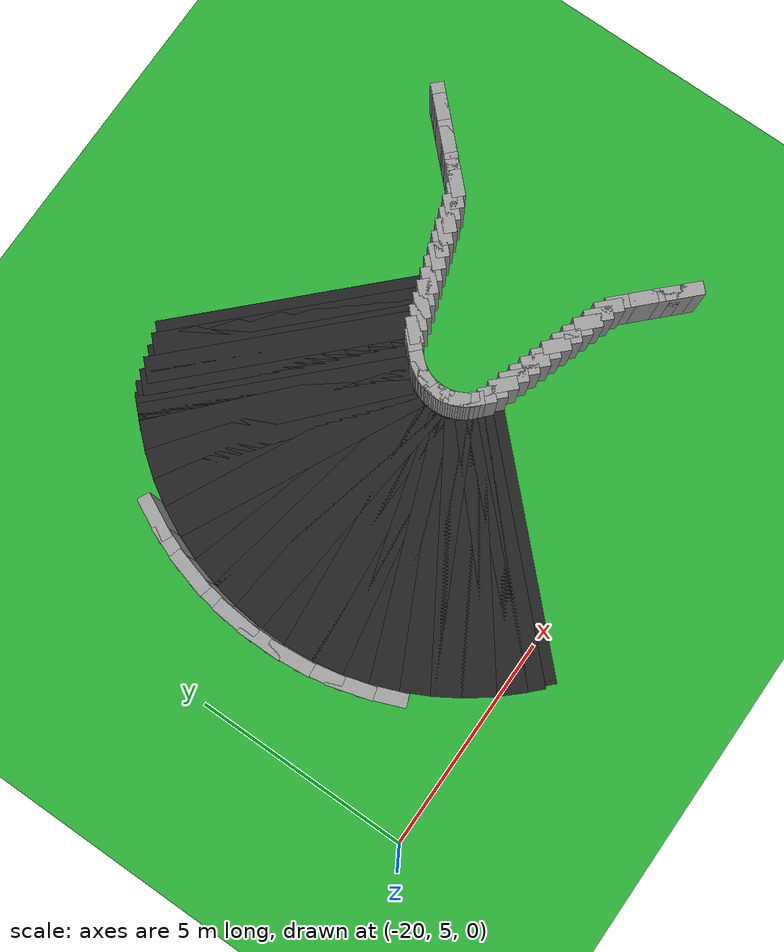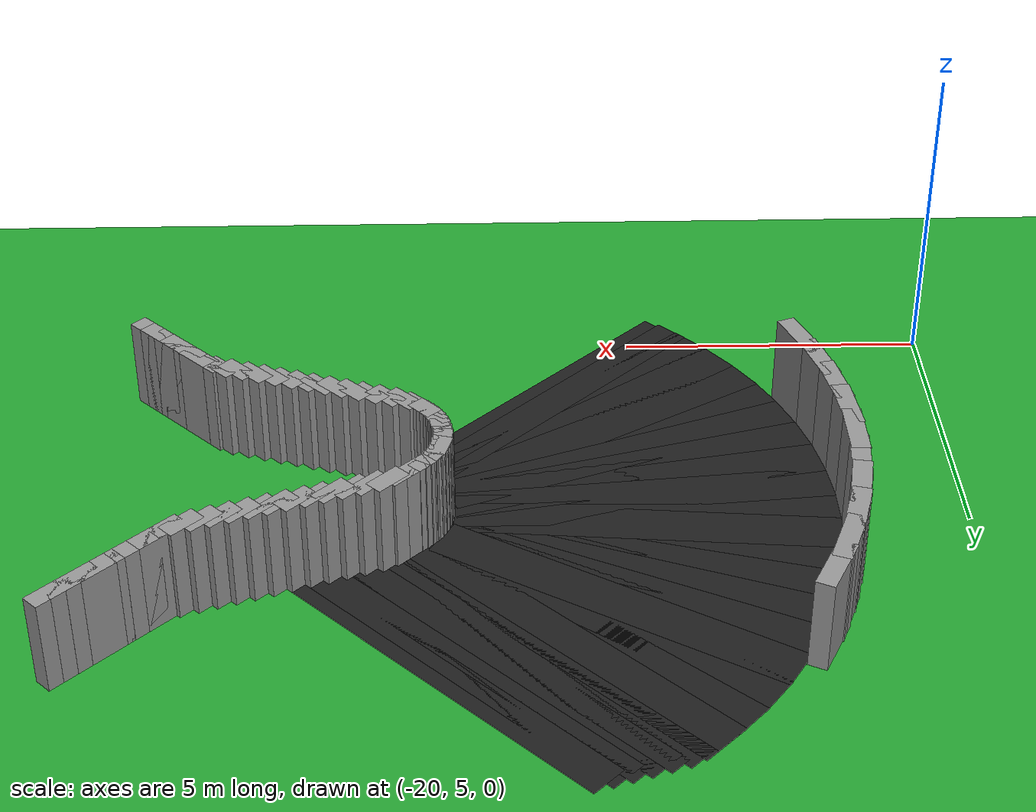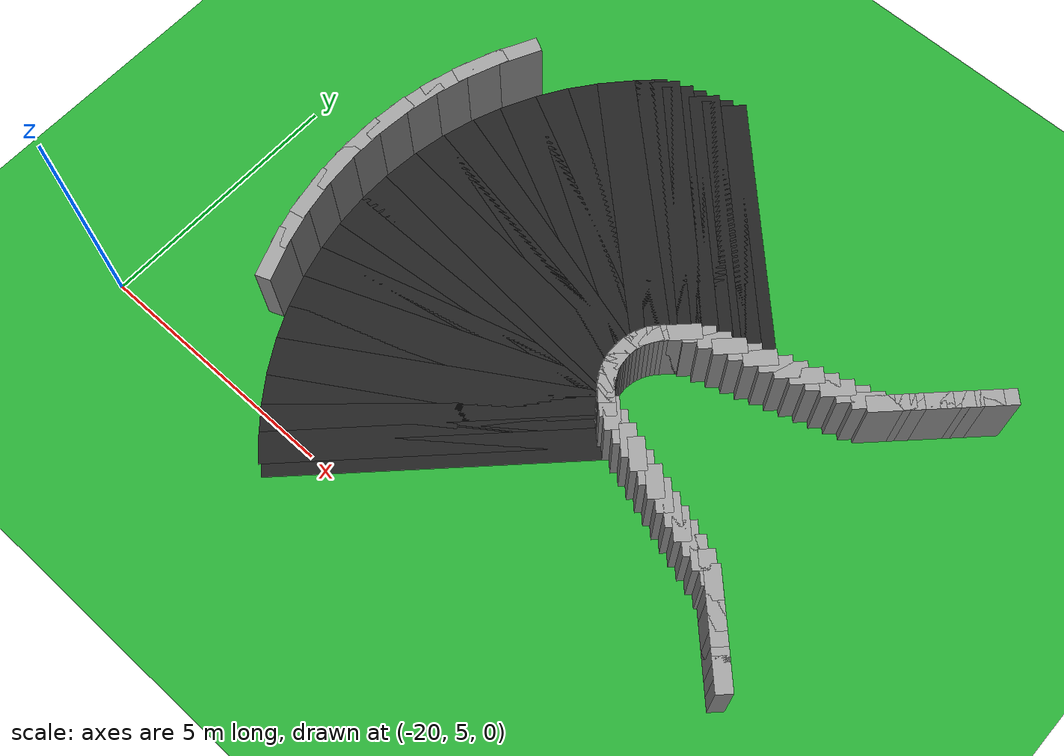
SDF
<sdf version="1.6">
 <world name="obstacle_asymturn">
  <include><uri>model://sun</uri></include>
  <model name="ground_plane">
   <static>true</static>
   <link name="link">
    <collision name="collision">
     <surface><friction><ode><mu>100</mu><mu2>50</mu2></ode></friction></surface>
     <geometry><plane><normal>0 0 1</normal><size>120 120</size></plane></geometry>
    </collision>
    <visual name="visual">
     <geometry><plane><normal>0 0 1</normal><size>120 120</size></plane></geometry>
     <material>
      <script><uri>file://media/materials/scripts/gazebo.material</uri><name>Gazebo/Green</name></script>
     </material>
    </visual>
   </link>
  </model>
  <model name="curbL_388">
   <static>true</static>
   <pose>-6.523 13.327 0.750 0 0 -2.35619</pose>
   <link name="link">
    <collision name="collision"><geometry><box><size>0.610 0.300 1.500</size></box></geometry></collision>
    <visual name="visual">
     <geometry><box><size>0.610 0.300 1.500</size></box></geometry>
     <material>
      <script><uri>file://media/materials/scripts/gazebo.material</uri><name>Gazebo/Grey</name></script>
     </material>
    </visual>
   </link>
  </model>
  <model name="curbL_389">
   <static>true</static>
   <pose>-6.700 13.150 0.750 0 0 -2.35619</pose>
   <link name="link">
    <collision name="collision"><geometry><box><size>0.610 0.300 1.500</size></box></geometry></collision>
    <visual name="visual">
     <geometry><box><size>0.610 0.300 1.500</size></box></geometry>
     <material>
      <script><uri>file://media/materials/scripts/gazebo.material</uri><name>Gazebo/Grey</name></script>
     </material>
    </visual>
   </link>
  </model>
  <model name="curbL_390">
   <static>true</static>
   <pose>-6.877 12.974 0.750 0 0 -2.35619</pose>
   <link name="link">
    <collision name="collision"><geometry><box><size>0.610 0.300 1.500</size></box></geometry></collision>
    <visual name="visual">
     <geometry><box><size>0.610 0.300 1.500</size></box></geometry>
     <material>
      <script><uri>file://media/materials/scripts/gazebo.material</uri><name>Gazebo/Grey</name></script>
     </material>
    </visual>
   </link>
  </model>
  <model name="curbL_391">
   <static>true</static>
   <pose>-7.054 12.797 0.750 0 0 -2.35619</pose>
   <link name="link">
    <collision name="collision"><geometry><box><size>0.610 0.300 1.500</size></box></geometry></collision>
    <visual name="visual">
     <geometry><box><size>0.610 0.300 1.500</size></box></geometry>
     <material>
      <script><uri>file://media/materials/scripts/gazebo.material</uri><name>Gazebo/Grey</name></script>
     </material>
    </visual>
   </link>
  </model>
  <model name="curbL_392">
   <static>true</static>
   <pose>-7.230 12.620 0.750 0 0 -2.35619</pose>
   <link name="link">
    <collision name="collision"><geometry><box><size>0.610 0.300 1.500</size></box></geometry></collision>
    <visual name="visual">
     <geometry><box><size>0.610 0.300 1.500</size></box></geometry>
     <material>
      <script><uri>file://media/materials/scripts/gazebo.material</uri><name>Gazebo/Grey</name></script>
     </material>
    </visual>
   </link>
  </model>
  <model name="curbL_393">
   <static>true</static>
   <pose>-7.407 12.443 0.750 0 0 -2.35619</pose>
   <link name="link">
    <collision name="collision"><geometry><box><size>0.610 0.300 1.500</size></box></geometry></collision>
    <visual name="visual">
     <geometry><box><size>0.610 0.300 1.500</size></box></geometry>
     <material>
      <script><uri>file://media/materials/scripts/gazebo.material</uri><name>Gazebo/Grey</name></script>
     </material>
    </visual>
   </link>
  </model>
  <model name="curbL_394">
   <static>true</static>
   <pose>-7.584 12.267 0.750 0 0 -2.35619</pose>
   <link name="link">
    <collision name="collision"><geometry><box><size>0.610 0.300 1.500</size></box></geometry></collision>
    <visual name="visual">
     <geometry><box><size>0.610 0.300 1.500</size></box></geometry>
     <material>
      <script><uri>file://media/materials/scripts/gazebo.material</uri><name>Gazebo/Grey</name></script>
     </material>
    </visual>
   </link>
  </model>
  <model name="curbL_395">
   <static>true</static>
   <pose>-7.761 12.090 0.750 0 0 -2.35619</pose>
   <link name="link">
    <collision name="collision"><geometry><box><size>0.610 0.300 1.500</size></box></geometry></collision>
    <visual name="visual">
     <geometry><box><size>0.610 0.300 1.500</size></box></geometry>
     <material>
      <script><uri>file://media/materials/scripts/gazebo.material</uri><name>Gazebo/Grey</name></script>
     </material>
    </visual>
   </link>
  </model>
  <model name="curbL_396">
   <static>true</static>
   <pose>-7.937 11.913 0.750 0 0 -2.35619</pose>
   <link name="link">
    <collision name="collision"><geometry><box><size>0.610 0.300 1.500</size></box></geometry></collision>
    <visual name="visual">
     <geometry><box><size>0.610 0.300 1.500</size></box></geometry>
     <material>
      <script><uri>file://media/materials/scripts/gazebo.material</uri><name>Gazebo/Grey</name></script>
     </material>
    </visual>
   </link>
  </model>
  <model name="curbL_397">
   <static>true</static>
   <pose>-8.164 11.786 0.750 0 0 -2.35619</pose>
   <link name="link">
    <collision name="collision"><geometry><box><size>0.610 0.300 1.500</size></box></geometry></collision>
    <visual name="visual">
     <geometry><box><size>0.610 0.300 1.500</size></box></geometry>
     <material>
      <script><uri>file://media/materials/scripts/gazebo.material</uri><name>Gazebo/Grey</name></script>
     </material>
    </visual>
   </link>
  </model>
  <model name="curbL_398">
   <static>true</static>
   <pose>-8.429 11.698 0.750 0 0 -2.35619</pose>
   <link name="link">
    <collision name="collision"><geometry><box><size>0.610 0.300 1.500</size></box></geometry></collision>
    <visual name="visual">
     <geometry><box><size>0.610 0.300 1.500</size></box></geometry>
     <material>
      <script><uri>file://media/materials/scripts/gazebo.material</uri><name>Gazebo/Grey</name></script>
     </material>
    </visual>
   </link>
  </model>
  <model name="curbL_399">
   <static>true</static>
   <pose>-8.694 11.609 0.750 0 0 -2.35619</pose>
   <link name="link">
    <collision name="collision"><geometry><box><size>0.610 0.300 1.500</size></box></geometry></collision>
    <visual name="visual">
     <geometry><box><size>0.610 0.300 1.500</size></box></geometry>
     <material>
      <script><uri>file://media/materials/scripts/gazebo.material</uri><name>Gazebo/Grey</name></script>
     </material>
    </visual>
   </link>
  </model>
  <model name="curbL_400">
   <static>true</static>
   <pose>-8.959 11.521 0.750 0 0 -2.35619</pose>
   <link name="link">
    <collision name="collision"><geometry><box><size>0.610 0.300 1.500</size></box></geometry></collision>
    <visual name="visual">
     <geometry><box><size>0.610 0.300 1.500</size></box></geometry>
     <material>
      <script><uri>file://media/materials/scripts/gazebo.material</uri><name>Gazebo/Grey</name></script>
     </material>
    </visual>
   </link>
  </model>
  <model name="curbL_401">
   <static>true</static>
   <pose>-9.225 11.432 0.750 0 0 -2.35619</pose>
   <link name="link">
    <collision name="collision"><geometry><box><size>0.610 0.300 1.500</size></box></geometry></collision>
    <visual name="visual">
     <geometry><box><size>0.610 0.300 1.500</size></box></geometry>
     <material>
      <script><uri>file://media/materials/scripts/gazebo.material</uri><name>Gazebo/Grey</name></script>
     </material>
    </visual>
   </link>
  </model>
  <model name="curbL_402">
   <static>true</static>
   <pose>-9.490 11.344 0.750 0 0 -2.35619</pose>
   <link name="link">
    <collision name="collision"><geometry><box><size>0.610 0.300 1.500</size></box></geometry></collision>
    <visual name="visual">
     <geometry><box><size>0.610 0.300 1.500</size></box></geometry>
     <material>
      <script><uri>file://media/materials/scripts/gazebo.material</uri><name>Gazebo/Grey</name></script>
     </material>
    </visual>
   </link>
  </model>
  <model name="asphalt_403">
   <static>true</static>
   <pose>-11.982 13.483 0.005 0 0 -2.35619</pose>
   <link name="link">
    <visual name="visual">
     <geometry><box><size>0.610 6.000 0.010</size></box></geometry>
     <material>
      <script><uri>file://media/materials/scripts/gazebo.material</uri><name>Gazebo/Black</name></script>
     </material>
    </visual>
   </link>
  </model>
  <model name="curbL_403">
   <static>true</static>
   <pose>-9.755 11.256 0.750 0 0 -2.35619</pose>
   <link name="link">
    <collision name="collision"><geometry><box><size>0.610 0.300 1.500</size></box></geometry></collision>
    <visual name="visual">
     <geometry><box><size>0.610 0.300 1.500</size></box></geometry>
     <material>
      <script><uri>file://media/materials/scripts/gazebo.material</uri><name>Gazebo/Grey</name></script>
     </material>
    </visual>
   </link>
  </model>
  <model name="asphalt_404">
   <static>true</static>
   <pose>-12.247 13.395 0.005 0 0 -2.35619</pose>
   <link name="link">
    <visual name="visual">
     <geometry><box><size>0.610 6.000 0.010</size></box></geometry>
     <material>
      <script><uri>file://media/materials/scripts/gazebo.material</uri><name>Gazebo/Black</name></script>
     </material>
    </visual>
   </link>
  </model>
  <model name="curbL_404">
   <static>true</static>
   <pose>-10.020 11.167 0.750 0 0 -2.35619</pose>
   <link name="link">
    <collision name="collision"><geometry><box><size>0.610 0.300 1.500</size></box></geometry></collision>
    <visual name="visual">
     <geometry><box><size>0.610 0.300 1.500</size></box></geometry>
     <material>
      <script><uri>file://media/materials/scripts/gazebo.material</uri><name>Gazebo/Grey</name></script>
     </material>
    </visual>
   </link>
  </model>
  <model name="asphalt_405">
   <static>true</static>
   <pose>-12.513 13.306 0.005 0 0 -2.35619</pose>
   <link name="link">
    <visual name="visual">
     <geometry><box><size>0.610 6.000 0.010</size></box></geometry>
     <material>
      <script><uri>file://media/materials/scripts/gazebo.material</uri><name>Gazebo/Black</name></script>
     </material>
    </visual>
   </link>
  </model>
  <model name="curbL_405">
   <static>true</static>
   <pose>-10.285 11.079 0.750 0 0 -2.35619</pose>
   <link name="link">
    <collision name="collision"><geometry><box><size>0.610 0.300 1.500</size></box></geometry></collision>
    <visual name="visual">
     <geometry><box><size>0.610 0.300 1.500</size></box></geometry>
     <material>
      <script><uri>file://media/materials/scripts/gazebo.material</uri><name>Gazebo/Grey</name></script>
     </material>
    </visual>
   </link>
  </model>
  <model name="asphalt_406">
   <static>true</static>
   <pose>-12.778 13.218 0.005 0 0 -2.35619</pose>
   <link name="link">
    <visual name="visual">
     <geometry><box><size>0.610 6.000 0.010</size></box></geometry>
     <material>
      <script><uri>file://media/materials/scripts/gazebo.material</uri><name>Gazebo/Black</name></script>
     </material>
    </visual>
   </link>
  </model>
  <model name="curbL_406">
   <static>true</static>
   <pose>-10.550 10.990 0.750 0 0 -2.35619</pose>
   <link name="link">
    <collision name="collision"><geometry><box><size>0.610 0.300 1.500</size></box></geometry></collision>
    <visual name="visual">
     <geometry><box><size>0.610 0.300 1.500</size></box></geometry>
     <material>
      <script><uri>file://media/materials/scripts/gazebo.material</uri><name>Gazebo/Grey</name></script>
     </material>
    </visual>
   </link>
  </model>
  <model name="asphalt_407">
   <static>true</static>
   <pose>-13.043 13.129 0.005 0 0 -2.35619</pose>
   <link name="link">
    <visual name="visual">
     <geometry><box><size>0.610 6.000 0.010</size></box></geometry>
     <material>
      <script><uri>file://media/materials/scripts/gazebo.material</uri><name>Gazebo/Black</name></script>
     </material>
    </visual>
   </link>
  </model>
  <model name="curbL_407">
   <static>true</static>
   <pose>-10.816 10.902 0.750 0 0 -2.35619</pose>
   <link name="link">
    <collision name="collision"><geometry><box><size>0.610 0.300 1.500</size></box></geometry></collision>
    <visual name="visual">
     <geometry><box><size>0.610 0.300 1.500</size></box></geometry>
     <material>
      <script><uri>file://media/materials/scripts/gazebo.material</uri><name>Gazebo/Grey</name></script>
     </material>
    </visual>
   </link>
  </model>
  <model name="asphalt_408">
   <static>true</static>
   <pose>-13.308 13.041 0.005 0 0 -2.35619</pose>
   <link name="link">
    <visual name="visual">
     <geometry><box><size>0.610 6.000 0.010</size></box></geometry>
     <material>
      <script><uri>file://media/materials/scripts/gazebo.material</uri><name>Gazebo/Black</name></script>
     </material>
    </visual>
   </link>
  </model>
  <model name="curbL_408">
   <static>true</static>
   <pose>-11.081 10.814 0.750 0 0 -2.35619</pose>
   <link name="link">
    <collision name="collision"><geometry><box><size>0.610 0.300 1.500</size></box></geometry></collision>
    <visual name="visual">
     <geometry><box><size>0.610 0.300 1.500</size></box></geometry>
     <material>
      <script><uri>file://media/materials/scripts/gazebo.material</uri><name>Gazebo/Grey</name></script>
     </material>
    </visual>
   </link>
  </model>
  <model name="asphalt_409">
   <static>true</static>
   <pose>-13.524 12.903 0.005 0 0 -2.35619</pose>
   <link name="link">
    <visual name="visual">
     <geometry><box><size>0.610 6.000 0.010</size></box></geometry>
     <material>
      <script><uri>file://media/materials/scripts/gazebo.material</uri><name>Gazebo/Black</name></script>
     </material>
    </visual>
   </link>
  </model>
  <model name="curbL_409">
   <static>true</static>
   <pose>-11.296 10.676 0.750 0 0 -2.35619</pose>
   <link name="link">
    <collision name="collision"><geometry><box><size>0.610 0.300 1.500</size></box></geometry></collision>
    <visual name="visual">
     <geometry><box><size>0.610 0.300 1.500</size></box></geometry>
     <material>
      <script><uri>file://media/materials/scripts/gazebo.material</uri><name>Gazebo/Grey</name></script>
     </material>
    </visual>
   </link>
  </model>
  <model name="asphalt_410">
   <static>true</static>
   <pose>-13.700 12.726 0.005 0 0 -2.35619</pose>
   <link name="link">
    <visual name="visual">
     <geometry><box><size>0.610 6.000 0.010</size></box></geometry>
     <material>
      <script><uri>file://media/materials/scripts/gazebo.material</uri><name>Gazebo/Black</name></script>
     </material>
    </visual>
   </link>
  </model>
  <model name="curbL_410">
   <static>true</static>
   <pose>-11.473 10.499 0.750 0 0 -2.35619</pose>
   <link name="link">
    <collision name="collision"><geometry><box><size>0.610 0.300 1.500</size></box></geometry></collision>
    <visual name="visual">
     <geometry><box><size>0.610 0.300 1.500</size></box></geometry>
     <material>
      <script><uri>file://media/materials/scripts/gazebo.material</uri><name>Gazebo/Grey</name></script>
     </material>
    </visual>
   </link>
  </model>
  <model name="asphalt_411">
   <static>true</static>
   <pose>-13.919 12.494 0.005 0 0 -2.30999</pose>
   <link name="link">
    <visual name="visual">
     <geometry><box><size>0.748 6.000 0.010</size></box></geometry>
     <material>
      <script><uri>file://media/materials/scripts/gazebo.material</uri><name>Gazebo/Black</name></script>
     </material>
    </visual>
   </link>
  </model>
  <model name="curbL_411">
   <static>true</static>
   <pose>-11.594 10.375 0.750 0 0 -2.30999</pose>
   <link name="link">
    <collision name="collision"><geometry><box><size>0.457 0.300 1.500</size></box></geometry></collision>
    <visual name="visual">
     <geometry><box><size>0.457 0.300 1.500</size></box></geometry>
     <material>
      <script><uri>file://media/materials/scripts/gazebo.material</uri><name>Gazebo/Grey</name></script>
     </material>
    </visual>
   </link>
  </model>
  <model name="asphalt_412">
   <static>true</static>
   <pose>-14.167 12.196 0.005 0 0 -2.21759</pose>
   <link name="link">
    <visual name="visual">
     <geometry><box><size>0.748 6.000 0.010</size></box></geometry>
     <material>
      <script><uri>file://media/materials/scripts/gazebo.material</uri><name>Gazebo/Black</name></script>
     </material>
    </visual>
   </link>
  </model>
  <model name="curbL_412">
   <static>true</static>
   <pose>-11.656 10.300 0.750 0 0 -2.21759</pose>
   <link name="link">
    <collision name="collision"><geometry><box><size>0.457 0.300 1.500</size></box></geometry></collision>
    <visual name="visual">
     <geometry><box><size>0.457 0.300 1.500</size></box></geometry>
     <material>
      <script><uri>file://media/materials/scripts/gazebo.material</uri><name>Gazebo/Grey</name></script>
     </material>
    </visual>
   </link>
  </model>
  <model name="asphalt_413">
   <static>true</static>
   <pose>-14.386 11.876 0.005 0 0 -2.12520</pose>
   <link name="link">
    <visual name="visual">
     <geometry><box><size>0.748 6.000 0.010</size></box></geometry>
     <material>
      <script><uri>file://media/materials/scripts/gazebo.material</uri><name>Gazebo/Black</name></script>
     </material>
    </visual>
   </link>
  </model>
  <model name="curbL_413">
   <static>true</static>
   <pose>-11.711 10.220 0.750 0 0 -2.12520</pose>
   <link name="link">
    <collision name="collision"><geometry><box><size>0.457 0.300 1.500</size></box></geometry></collision>
    <visual name="visual">
     <geometry><box><size>0.457 0.300 1.500</size></box></geometry>
     <material>
      <script><uri>file://media/materials/scripts/gazebo.material</uri><name>Gazebo/Grey</name></script>
     </material>
    </visual>
   </link>
  </model>
  <model name="asphalt_414">
   <static>true</static>
   <pose>-14.575 11.538 0.005 0 0 -2.03280</pose>
   <link name="link">
    <visual name="visual">
     <geometry><box><size>0.748 6.000 0.010</size></box></geometry>
     <material>
      <script><uri>file://media/materials/scripts/gazebo.material</uri><name>Gazebo/Black</name></script>
     </material>
    </visual>
   </link>
  </model>
  <model name="curbL_414">
   <static>true</static>
   <pose>-11.758 10.135 0.750 0 0 -2.03280</pose>
   <link name="link">
    <collision name="collision"><geometry><box><size>0.457 0.300 1.500</size></box></geometry></collision>
    <visual name="visual">
     <geometry><box><size>0.457 0.300 1.500</size></box></geometry>
     <material>
      <script><uri>file://media/materials/scripts/gazebo.material</uri><name>Gazebo/Grey</name></script>
     </material>
    </visual>
   </link>
  </model>
  <model name="curbR_414">
   <static>true</static>
   <pose>-17.391 12.940 0.750 0 0 -2.03280</pose>
   <link name="link">
    <collision name="collision"><geometry><box><size>1.039 0.300 1.500</size></box></geometry></collision>
    <visual name="visual">
     <geometry><box><size>1.039 0.300 1.500</size></box></geometry>
     <material>
      <script><uri>file://media/materials/scripts/gazebo.material</uri><name>Gazebo/Grey</name></script>
     </material>
    </visual>
   </link>
  </model>
  <model name="asphalt_415">
   <static>true</static>
   <pose>-14.731 11.183 0.005 0 0 -1.94040</pose>
   <link name="link">
    <visual name="visual">
     <geometry><box><size>0.748 6.000 0.010</size></box></geometry>
     <material>
      <script><uri>file://media/materials/scripts/gazebo.material</uri><name>Gazebo/Black</name></script>
     </material>
    </visual>
   </link>
  </model>
  <model name="curbL_415">
   <static>true</static>
   <pose>-11.797 10.047 0.750 0 0 -1.94040</pose>
   <link name="link">
    <collision name="collision"><geometry><box><size>0.457 0.300 1.500</size></box></geometry></collision>
    <visual name="visual">
     <geometry><box><size>0.457 0.300 1.500</size></box></geometry>
     <material>
      <script><uri>file://media/materials/scripts/gazebo.material</uri><name>Gazebo/Grey</name></script>
     </material>
    </visual>
   </link>
  </model>
  <model name="curbR_415">
   <static>true</static>
   <pose>-17.665 12.320 0.750 0 0 -1.94040</pose>
   <link name="link">
    <collision name="collision"><geometry><box><size>1.039 0.300 1.500</size></box></geometry></collision>
    <visual name="visual">
     <geometry><box><size>1.039 0.300 1.500</size></box></geometry>
     <material>
      <script><uri>file://media/materials/scripts/gazebo.material</uri><name>Gazebo/Grey</name></script>
     </material>
    </visual>
   </link>
  </model>
  <model name="asphalt_416">
   <static>true</static>
   <pose>-14.854 10.816 0.005 0 0 -1.84800</pose>
   <link name="link">
    <visual name="visual">
     <geometry><box><size>0.748 6.000 0.010</size></box></geometry>
     <material>
      <script><uri>file://media/materials/scripts/gazebo.material</uri><name>Gazebo/Black</name></script>
     </material>
    </visual>
   </link>
  </model>
  <model name="curbL_416">
   <static>true</static>
   <pose>-11.828 9.955 0.750 0 0 -1.84800</pose>
   <link name="link">
    <collision name="collision"><geometry><box><size>0.457 0.300 1.500</size></box></geometry></collision>
    <visual name="visual">
     <geometry><box><size>0.457 0.300 1.500</size></box></geometry>
     <material>
      <script><uri>file://media/materials/scripts/gazebo.material</uri><name>Gazebo/Grey</name></script>
     </material>
    </visual>
   </link>
  </model>
  <model name="curbR_416">
   <static>true</static>
   <pose>-17.881 11.677 0.750 0 0 -1.84800</pose>
   <link name="link">
    <collision name="collision"><geometry><box><size>1.039 0.300 1.500</size></box></geometry></collision>
    <visual name="visual">
     <geometry><box><size>1.039 0.300 1.500</size></box></geometry>
     <material>
      <script><uri>file://media/materials/scripts/gazebo.material</uri><name>Gazebo/Grey</name></script>
     </material>
    </visual>
   </link>
  </model>
  <model name="asphalt_417">
   <static>true</static>
   <pose>-14.943 10.438 0.005 0 0 -1.75560</pose>
   <link name="link">
    <visual name="visual">
     <geometry><box><size>0.748 6.000 0.010</size></box></geometry>
     <material>
      <script><uri>file://media/materials/scripts/gazebo.material</uri><name>Gazebo/Black</name></script>
     </material>
    </visual>
   </link>
  </model>
  <model name="curbL_417">
   <static>true</static>
   <pose>-11.850 9.860 0.750 0 0 -1.75560</pose>
   <link name="link">
    <collision name="collision"><geometry><box><size>0.457 0.300 1.500</size></box></geometry></collision>
    <visual name="visual">
     <geometry><box><size>0.457 0.300 1.500</size></box></geometry>
     <material>
      <script><uri>file://media/materials/scripts/gazebo.material</uri><name>Gazebo/Grey</name></script>
     </material>
    </visual>
   </link>
  </model>
  <model name="curbR_417">
   <static>true</static>
   <pose>-18.036 11.017 0.750 0 0 -1.75560</pose>
   <link name="link">
    <collision name="collision"><geometry><box><size>1.039 0.300 1.500</size></box></geometry></collision>
    <visual name="visual">
     <geometry><box><size>1.039 0.300 1.500</size></box></geometry>
     <material>
      <script><uri>file://media/materials/scripts/gazebo.material</uri><name>Gazebo/Grey</name></script>
     </material>
    </visual>
   </link>
  </model>
  <model name="asphalt_418">
   <static>true</static>
   <pose>-14.997 10.054 0.005 0 0 -1.66320</pose>
   <link name="link">
    <visual name="visual">
     <geometry><box><size>0.748 6.000 0.010</size></box></geometry>
     <material>
      <script><uri>file://media/materials/scripts/gazebo.material</uri><name>Gazebo/Black</name></script>
     </material>
    </visual>
   </link>
  </model>
  <model name="curbL_418">
   <static>true</static>
   <pose>-11.864 9.764 0.750 0 0 -1.66320</pose>
   <link name="link">
    <collision name="collision"><geometry><box><size>0.457 0.300 1.500</size></box></geometry></collision>
    <visual name="visual">
     <geometry><box><size>0.457 0.300 1.500</size></box></geometry>
     <material>
      <script><uri>file://media/materials/scripts/gazebo.material</uri><name>Gazebo/Grey</name></script>
     </material>
    </visual>
   </link>
  </model>
  <model name="curbR_418">
   <static>true</static>
   <pose>-18.130 10.345 0.750 0 0 -1.66320</pose>
   <link name="link">
    <collision name="collision"><geometry><box><size>1.039 0.300 1.500</size></box></geometry></collision>
    <visual name="visual">
     <geometry><box><size>1.039 0.300 1.500</size></box></geometry>
     <material>
      <script><uri>file://media/materials/scripts/gazebo.material</uri><name>Gazebo/Grey</name></script>
     </material>
    </visual>
   </link>
  </model>
  <model name="asphalt_419">
   <static>true</static>
   <pose>-15.015 9.667 0.005 0 0 -1.57080</pose>
   <link name="link">
    <visual name="visual">
     <geometry><box><size>0.748 6.000 0.010</size></box></geometry>
     <material>
      <script><uri>file://media/materials/scripts/gazebo.material</uri><name>Gazebo/Black</name></script>
     </material>
    </visual>
   </link>
  </model>
  <model name="curbL_419">
   <static>true</static>
   <pose>-11.868 9.667 0.750 0 0 -1.57080</pose>
   <link name="link">
    <collision name="collision"><geometry><box><size>0.457 0.300 1.500</size></box></geometry></collision>
    <visual name="visual">
     <geometry><box><size>0.457 0.300 1.500</size></box></geometry>
     <material>
      <script><uri>file://media/materials/scripts/gazebo.material</uri><name>Gazebo/Grey</name></script>
     </material>
    </visual>
   </link>
  </model>
  <model name="curbR_419">
   <static>true</static>
   <pose>-18.161 9.667 0.750 0 0 -1.57080</pose>
   <link name="link">
    <collision name="collision"><geometry><box><size>1.039 0.300 1.500</size></box></geometry></collision>
    <visual name="visual">
     <geometry><box><size>1.039 0.300 1.500</size></box></geometry>
     <material>
      <script><uri>file://media/materials/scripts/gazebo.material</uri><name>Gazebo/Grey</name></script>
     </material>
    </visual>
   </link>
  </model>
  <model name="asphalt_420">
   <static>true</static>
   <pose>-14.997 9.280 0.005 0 0 -1.47840</pose>
   <link name="link">
    <visual name="visual">
     <geometry><box><size>0.748 6.000 0.010</size></box></geometry>
     <material>
      <script><uri>file://media/materials/scripts/gazebo.material</uri><name>Gazebo/Black</name></script>
     </material>
    </visual>
   </link>
  </model>
  <model name="curbL_420">
   <static>true</static>
   <pose>-11.864 9.570 0.750 0 0 -1.47840</pose>
   <link name="link">
    <collision name="collision"><geometry><box><size>0.457 0.300 1.500</size></box></geometry></collision>
    <visual name="visual">
     <geometry><box><size>0.457 0.300 1.500</size></box></geometry>
     <material>
      <script><uri>file://media/materials/scripts/gazebo.material</uri><name>Gazebo/Grey</name></script>
     </material>
    </visual>
   </link>
  </model>
  <model name="curbR_420">
   <static>true</static>
   <pose>-18.130 8.990 0.750 0 0 -1.47840</pose>
   <link name="link">
    <collision name="collision"><geometry><box><size>1.039 0.300 1.500</size></box></geometry></collision>
    <visual name="visual">
     <geometry><box><size>1.039 0.300 1.500</size></box></geometry>
     <material>
      <script><uri>file://media/materials/scripts/gazebo.material</uri><name>Gazebo/Grey</name></script>
     </material>
    </visual>
   </link>
  </model>
  <model name="asphalt_421">
   <static>true</static>
   <pose>-14.943 8.896 0.005 0 0 -1.38600</pose>
   <link name="link">
    <visual name="visual">
     <geometry><box><size>0.748 6.000 0.010</size></box></geometry>
     <material>
      <script><uri>file://media/materials/scripts/gazebo.material</uri><name>Gazebo/Black</name></script>
     </material>
    </visual>
   </link>
  </model>
  <model name="curbL_421">
   <static>true</static>
   <pose>-11.850 9.474 0.750 0 0 -1.38600</pose>
   <link name="link">
    <collision name="collision"><geometry><box><size>0.457 0.300 1.500</size></box></geometry></collision>
    <visual name="visual">
     <geometry><box><size>0.457 0.300 1.500</size></box></geometry>
     <material>
      <script><uri>file://media/materials/scripts/gazebo.material</uri><name>Gazebo/Grey</name></script>
     </material>
    </visual>
   </link>
  </model>
  <model name="curbR_421">
   <static>true</static>
   <pose>-18.036 8.318 0.750 0 0 -1.38600</pose>
   <link name="link">
    <collision name="collision"><geometry><box><size>1.039 0.300 1.500</size></box></geometry></collision>
    <visual name="visual">
     <geometry><box><size>1.039 0.300 1.500</size></box></geometry>
     <material>
      <script><uri>file://media/materials/scripts/gazebo.material</uri><name>Gazebo/Grey</name></script>
     </material>
    </visual>
   </link>
  </model>
  <model name="asphalt_422">
   <static>true</static>
   <pose>-14.854 8.519 0.005 0 0 -1.29360</pose>
   <link name="link">
    <visual name="visual">
     <geometry><box><size>0.748 6.000 0.010</size></box></geometry>
     <material>
      <script><uri>file://media/materials/scripts/gazebo.material</uri><name>Gazebo/Black</name></script>
     </material>
    </visual>
   </link>
  </model>
  <model name="curbL_422">
   <static>true</static>
   <pose>-11.828 9.380 0.750 0 0 -1.29360</pose>
   <link name="link">
    <collision name="collision"><geometry><box><size>0.457 0.300 1.500</size></box></geometry></collision>
    <visual name="visual">
     <geometry><box><size>0.457 0.300 1.500</size></box></geometry>
     <material>
      <script><uri>file://media/materials/scripts/gazebo.material</uri><name>Gazebo/Grey</name></script>
     </material>
    </visual>
   </link>
  </model>
  <model name="curbR_422">
   <static>true</static>
   <pose>-17.881 7.658 0.750 0 0 -1.29360</pose>
   <link name="link">
    <collision name="collision"><geometry><box><size>1.039 0.300 1.500</size></box></geometry></collision>
    <visual name="visual">
     <geometry><box><size>1.039 0.300 1.500</size></box></geometry>
     <material>
      <script><uri>file://media/materials/scripts/gazebo.material</uri><name>Gazebo/Grey</name></script>
     </material>
    </visual>
   </link>
  </model>
  <model name="asphalt_423">
   <static>true</static>
   <pose>-14.731 8.151 0.005 0 0 -1.20120</pose>
   <link name="link">
    <visual name="visual">
     <geometry><box><size>0.748 6.000 0.010</size></box></geometry>
     <material>
      <script><uri>file://media/materials/scripts/gazebo.material</uri><name>Gazebo/Black</name></script>
     </material>
    </visual>
   </link>
  </model>
  <model name="curbL_423">
   <static>true</static>
   <pose>-11.797 9.288 0.750 0 0 -1.20120</pose>
   <link name="link">
    <collision name="collision"><geometry><box><size>0.457 0.300 1.500</size></box></geometry></collision>
    <visual name="visual">
     <geometry><box><size>0.457 0.300 1.500</size></box></geometry>
     <material>
      <script><uri>file://media/materials/scripts/gazebo.material</uri><name>Gazebo/Grey</name></script>
     </material>
    </visual>
   </link>
  </model>
  <model name="curbR_423">
   <static>true</static>
   <pose>-17.665 7.015 0.750 0 0 -1.20120</pose>
   <link name="link">
    <collision name="collision"><geometry><box><size>1.039 0.300 1.500</size></box></geometry></collision>
    <visual name="visual">
     <geometry><box><size>1.039 0.300 1.500</size></box></geometry>
     <material>
      <script><uri>file://media/materials/scripts/gazebo.material</uri><name>Gazebo/Grey</name></script>
     </material>
    </visual>
   </link>
  </model>
  <model name="asphalt_424">
   <static>true</static>
   <pose>-14.575 7.797 0.005 0 0 -1.10880</pose>
   <link name="link">
    <visual name="visual">
     <geometry><box><size>0.748 6.000 0.010</size></box></geometry>
     <material>
      <script><uri>file://media/materials/scripts/gazebo.material</uri><name>Gazebo/Black</name></script>
     </material>
    </visual>
   </link>
  </model>
  <model name="curbL_424">
   <static>true</static>
   <pose>-11.758 9.199 0.750 0 0 -1.10880</pose>
   <link name="link">
    <collision name="collision"><geometry><box><size>0.457 0.300 1.500</size></box></geometry></collision>
    <visual name="visual">
     <geometry><box><size>0.457 0.300 1.500</size></box></geometry>
     <material>
      <script><uri>file://media/materials/scripts/gazebo.material</uri><name>Gazebo/Grey</name></script>
     </material>
    </visual>
   </link>
  </model>
  <model name="asphalt_425">
   <static>true</static>
   <pose>-14.386 7.458 0.005 0 0 -1.01640</pose>
   <link name="link">
    <visual name="visual">
     <geometry><box><size>0.748 6.000 0.010</size></box></geometry>
     <material>
      <script><uri>file://media/materials/scripts/gazebo.material</uri><name>Gazebo/Black</name></script>
     </material>
    </visual>
   </link>
  </model>
  <model name="curbL_425">
   <static>true</static>
   <pose>-11.711 9.115 0.750 0 0 -1.01640</pose>
   <link name="link">
    <collision name="collision"><geometry><box><size>0.457 0.300 1.500</size></box></geometry></collision>
    <visual name="visual">
     <geometry><box><size>0.457 0.300 1.500</size></box></geometry>
     <material>
      <script><uri>file://media/materials/scripts/gazebo.material</uri><name>Gazebo/Grey</name></script>
     </material>
    </visual>
   </link>
  </model>
  <model name="asphalt_426">
   <static>true</static>
   <pose>-14.167 7.138 0.005 0 0 -0.92400</pose>
   <link name="link">
    <visual name="visual">
     <geometry><box><size>0.748 6.000 0.010</size></box></geometry>
     <material>
      <script><uri>file://media/materials/scripts/gazebo.material</uri><name>Gazebo/Black</name></script>
     </material>
    </visual>
   </link>
  </model>
  <model name="curbL_426">
   <static>true</static>
   <pose>-11.656 9.035 0.750 0 0 -0.92400</pose>
   <link name="link">
    <collision name="collision"><geometry><box><size>0.457 0.300 1.500</size></box></geometry></collision>
    <visual name="visual">
     <geometry><box><size>0.457 0.300 1.500</size></box></geometry>
     <material>
      <script><uri>file://media/materials/scripts/gazebo.material</uri><name>Gazebo/Grey</name></script>
     </material>
    </visual>
   </link>
  </model>
  <model name="asphalt_427">
   <static>true</static>
   <pose>-13.919 6.840 0.005 0 0 -0.83160</pose>
   <link name="link">
    <visual name="visual">
     <geometry><box><size>0.748 6.000 0.010</size></box></geometry>
     <material>
      <script><uri>file://media/materials/scripts/gazebo.material</uri><name>Gazebo/Black</name></script>
     </material>
    </visual>
   </link>
  </model>
  <model name="curbL_427">
   <static>true</static>
   <pose>-11.594 8.960 0.750 0 0 -0.83160</pose>
   <link name="link">
    <collision name="collision"><geometry><box><size>0.457 0.300 1.500</size></box></geometry></collision>
    <visual name="visual">
     <geometry><box><size>0.457 0.300 1.500</size></box></geometry>
     <material>
      <script><uri>file://media/materials/scripts/gazebo.material</uri><name>Gazebo/Grey</name></script>
     </material>
    </visual>
   </link>
  </model>
  <model name="asphalt_428">
   <static>true</static>
   <pose>-13.700 6.608 0.005 0 0 -0.78540</pose>
   <link name="link">
    <visual name="visual">
     <geometry><box><size>0.610 6.000 0.010</size></box></geometry>
     <material>
      <script><uri>file://media/materials/scripts/gazebo.material</uri><name>Gazebo/Black</name></script>
     </material>
    </visual>
   </link>
  </model>
  <model name="curbL_428">
   <static>true</static>
   <pose>-11.473 8.836 0.750 0 0 -0.78540</pose>
   <link name="link">
    <collision name="collision"><geometry><box><size>0.610 0.300 1.500</size></box></geometry></collision>
    <visual name="visual">
     <geometry><box><size>0.610 0.300 1.500</size></box></geometry>
     <material>
      <script><uri>file://media/materials/scripts/gazebo.material</uri><name>Gazebo/Grey</name></script>
     </material>
    </visual>
   </link>
  </model>
  <model name="asphalt_429">
   <static>true</static>
   <pose>-13.477 6.478 0.005 0 0 -0.78540</pose>
   <link name="link">
    <visual name="visual">
     <geometry><box><size>0.610 6.000 0.010</size></box></geometry>
     <material>
      <script><uri>file://media/materials/scripts/gazebo.material</uri><name>Gazebo/Black</name></script>
     </material>
    </visual>
   </link>
  </model>
  <model name="curbL_429">
   <static>true</static>
   <pose>-11.250 8.706 0.750 0 0 -0.78540</pose>
   <link name="link">
    <collision name="collision"><geometry><box><size>0.610 0.300 1.500</size></box></geometry></collision>
    <visual name="visual">
     <geometry><box><size>0.610 0.300 1.500</size></box></geometry>
     <material>
      <script><uri>file://media/materials/scripts/gazebo.material</uri><name>Gazebo/Grey</name></script>
     </material>
    </visual>
   </link>
  </model>
  <model name="curbL_430">
   <static>true</static>
   <pose>-10.984 8.617 0.750 0 0 -0.78540</pose>
   <link name="link">
    <collision name="collision"><geometry><box><size>0.610 0.300 1.500</size></box></geometry></collision>
    <visual name="visual">
     <geometry><box><size>0.610 0.300 1.500</size></box></geometry>
     <material>
      <script><uri>file://media/materials/scripts/gazebo.material</uri><name>Gazebo/Grey</name></script>
     </material>
    </visual>
   </link>
  </model>
  <model name="curbL_431">
   <static>true</static>
   <pose>-10.719 8.529 0.750 0 0 -0.78540</pose>
   <link name="link">
    <collision name="collision"><geometry><box><size>0.610 0.300 1.500</size></box></geometry></collision>
    <visual name="visual">
     <geometry><box><size>0.610 0.300 1.500</size></box></geometry>
     <material>
      <script><uri>file://media/materials/scripts/gazebo.material</uri><name>Gazebo/Grey</name></script>
     </material>
    </visual>
   </link>
  </model>
  <model name="curbL_432">
   <static>true</static>
   <pose>-10.454 8.440 0.750 0 0 -0.78540</pose>
   <link name="link">
    <collision name="collision"><geometry><box><size>0.610 0.300 1.500</size></box></geometry></collision>
    <visual name="visual">
     <geometry><box><size>0.610 0.300 1.500</size></box></geometry>
     <material>
      <script><uri>file://media/materials/scripts/gazebo.material</uri><name>Gazebo/Grey</name></script>
     </material>
    </visual>
   </link>
  </model>
  <model name="curbL_433">
   <static>true</static>
   <pose>-10.189 8.352 0.750 0 0 -0.78540</pose>
   <link name="link">
    <collision name="collision"><geometry><box><size>0.610 0.300 1.500</size></box></geometry></collision>
    <visual name="visual">
     <geometry><box><size>0.610 0.300 1.500</size></box></geometry>
     <material>
      <script><uri>file://media/materials/scripts/gazebo.material</uri><name>Gazebo/Grey</name></script>
     </material>
    </visual>
   </link>
  </model>
  <model name="curbL_434">
   <static>true</static>
   <pose>-9.924 8.264 0.750 0 0 -0.78540</pose>
   <link name="link">
    <collision name="collision"><geometry><box><size>0.610 0.300 1.500</size></box></geometry></collision>
    <visual name="visual">
     <geometry><box><size>0.610 0.300 1.500</size></box></geometry>
     <material>
      <script><uri>file://media/materials/scripts/gazebo.material</uri><name>Gazebo/Grey</name></script>
     </material>
    </visual>
   </link>
  </model>
  <model name="curbL_435">
   <static>true</static>
   <pose>-9.659 8.175 0.750 0 0 -0.78540</pose>
   <link name="link">
    <collision name="collision"><geometry><box><size>0.610 0.300 1.500</size></box></geometry></collision>
    <visual name="visual">
     <geometry><box><size>0.610 0.300 1.500</size></box></geometry>
     <material>
      <script><uri>file://media/materials/scripts/gazebo.material</uri><name>Gazebo/Grey</name></script>
     </material>
    </visual>
   </link>
  </model>
  <model name="curbL_436">
   <static>true</static>
   <pose>-9.393 8.087 0.750 0 0 -0.78540</pose>
   <link name="link">
    <collision name="collision"><geometry><box><size>0.610 0.300 1.500</size></box></geometry></collision>
    <visual name="visual">
     <geometry><box><size>0.610 0.300 1.500</size></box></geometry>
     <material>
      <script><uri>file://media/materials/scripts/gazebo.material</uri><name>Gazebo/Grey</name></script>
     </material>
    </visual>
   </link>
  </model>
  <model name="curbL_437">
   <static>true</static>
   <pose>-9.128 7.998 0.750 0 0 -0.78540</pose>
   <link name="link">
    <collision name="collision"><geometry><box><size>0.610 0.300 1.500</size></box></geometry></collision>
    <visual name="visual">
     <geometry><box><size>0.610 0.300 1.500</size></box></geometry>
     <material>
      <script><uri>file://media/materials/scripts/gazebo.material</uri><name>Gazebo/Grey</name></script>
     </material>
    </visual>
   </link>
  </model>
  <model name="curbL_438">
   <static>true</static>
   <pose>-8.863 7.910 0.750 0 0 -0.78540</pose>
   <link name="link">
    <collision name="collision"><geometry><box><size>0.610 0.300 1.500</size></box></geometry></collision>
    <visual name="visual">
     <geometry><box><size>0.610 0.300 1.500</size></box></geometry>
     <material>
      <script><uri>file://media/materials/scripts/gazebo.material</uri><name>Gazebo/Grey</name></script>
     </material>
    </visual>
   </link>
  </model>
  <model name="curbL_439">
   <static>true</static>
   <pose>-8.598 7.822 0.750 0 0 -0.78540</pose>
   <link name="link">
    <collision name="collision"><geometry><box><size>0.610 0.300 1.500</size></box></geometry></collision>
    <visual name="visual">
     <geometry><box><size>0.610 0.300 1.500</size></box></geometry>
     <material>
      <script><uri>file://media/materials/scripts/gazebo.material</uri><name>Gazebo/Grey</name></script>
     </material>
    </visual>
   </link>
  </model>
  <model name="curbL_440">
   <static>true</static>
   <pose>-8.333 7.733 0.750 0 0 -0.78540</pose>
   <link name="link">
    <collision name="collision"><geometry><box><size>0.610 0.300 1.500</size></box></geometry></collision>
    <visual name="visual">
     <geometry><box><size>0.610 0.300 1.500</size></box></geometry>
     <material>
      <script><uri>file://media/materials/scripts/gazebo.material</uri><name>Gazebo/Grey</name></script>
     </material>
    </visual>
   </link>
  </model>
  <model name="curbL_441">
   <static>true</static>
   <pose>-8.114 7.598 0.750 0 0 -0.78540</pose>
   <link name="link">
    <collision name="collision"><geometry><box><size>0.610 0.300 1.500</size></box></geometry></collision>
    <visual name="visual">
     <geometry><box><size>0.610 0.300 1.500</size></box></geometry>
     <material>
      <script><uri>file://media/materials/scripts/gazebo.material</uri><name>Gazebo/Grey</name></script>
     </material>
    </visual>
   </link>
  </model>
  <model name="curbL_442">
   <static>true</static>
   <pose>-7.937 7.422 0.750 0 0 -0.78540</pose>
   <link name="link">
    <collision name="collision"><geometry><box><size>0.610 0.300 1.500</size></box></geometry></collision>
    <visual name="visual">
     <geometry><box><size>0.610 0.300 1.500</size></box></geometry>
     <material>
      <script><uri>file://media/materials/scripts/gazebo.material</uri><name>Gazebo/Grey</name></script>
     </material>
    </visual>
   </link>
  </model>
  <model name="curbL_443">
   <static>true</static>
   <pose>-7.761 7.245 0.750 0 0 -0.78540</pose>
   <link name="link">
    <collision name="collision"><geometry><box><size>0.610 0.300 1.500</size></box></geometry></collision>
    <visual name="visual">
     <geometry><box><size>0.610 0.300 1.500</size></box></geometry>
     <material>
      <script><uri>file://media/materials/scripts/gazebo.material</uri><name>Gazebo/Grey</name></script>
     </material>
    </visual>
   </link>
  </model>
  <model name="curbL_444">
   <static>true</static>
   <pose>-7.584 7.068 0.750 0 0 -0.78540</pose>
   <link name="link">
    <collision name="collision"><geometry><box><size>0.610 0.300 1.500</size></box></geometry></collision>
    <visual name="visual">
     <geometry><box><size>0.610 0.300 1.500</size></box></geometry>
     <material>
      <script><uri>file://media/materials/scripts/gazebo.material</uri><name>Gazebo/Grey</name></script>
     </material>
    </visual>
   </link>
  </model>
  <model name="curbL_445">
   <static>true</static>
   <pose>-7.407 6.891 0.750 0 0 -0.78540</pose>
   <link name="link">
    <collision name="collision"><geometry><box><size>0.610 0.300 1.500</size></box></geometry></collision>
    <visual name="visual">
     <geometry><box><size>0.610 0.300 1.500</size></box></geometry>
     <material>
      <script><uri>file://media/materials/scripts/gazebo.material</uri><name>Gazebo/Grey</name></script>
     </material>
    </visual>
   </link>
  </model>
  <model name="curbL_446">
   <static>true</static>
   <pose>-7.230 6.714 0.750 0 0 -0.78540</pose>
   <link name="link">
    <collision name="collision"><geometry><box><size>0.610 0.300 1.500</size></box></geometry></collision>
    <visual name="visual">
     <geometry><box><size>0.610 0.300 1.500</size></box></geometry>
     <material>
      <script><uri>file://media/materials/scripts/gazebo.material</uri><name>Gazebo/Grey</name></script>
     </material>
    </visual>
   </link>
  </model>
  <model name="curbL_447">
   <static>true</static>
   <pose>-7.054 6.538 0.750 0 0 -0.78540</pose>
   <link name="link">
    <collision name="collision"><geometry><box><size>0.610 0.300 1.500</size></box></geometry></collision>
    <visual name="visual">
     <geometry><box><size>0.610 0.300 1.500</size></box></geometry>
     <material>
      <script><uri>file://media/materials/scripts/gazebo.material</uri><name>Gazebo/Grey</name></script>
     </material>
    </visual>
   </link>
  </model>
 </world>
</sdf>
